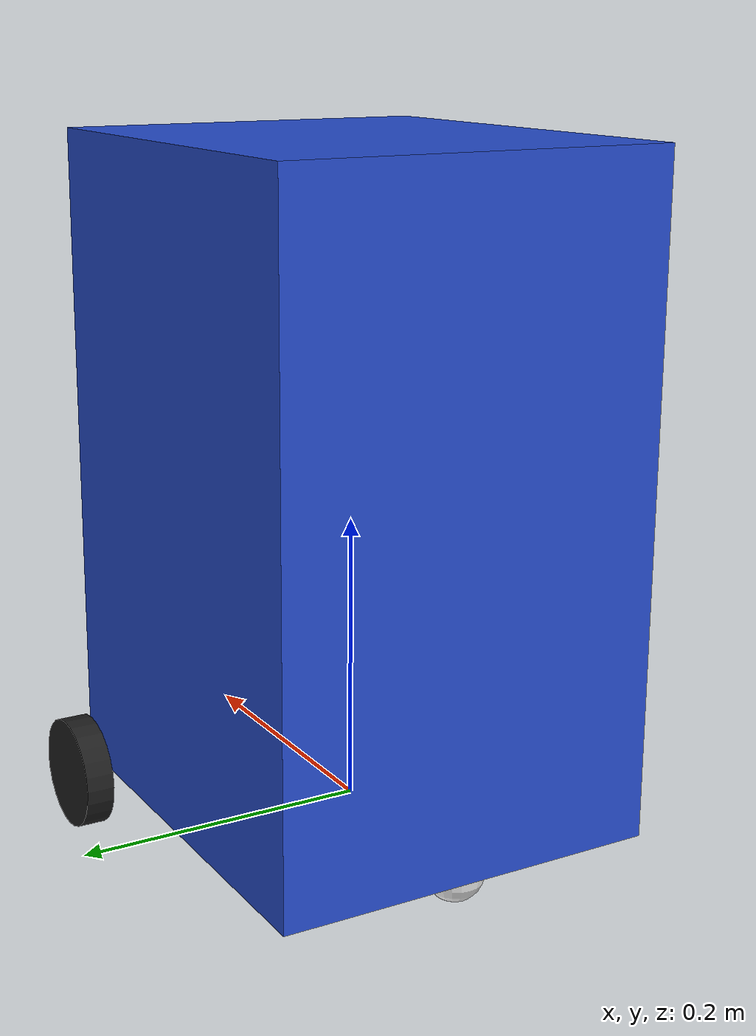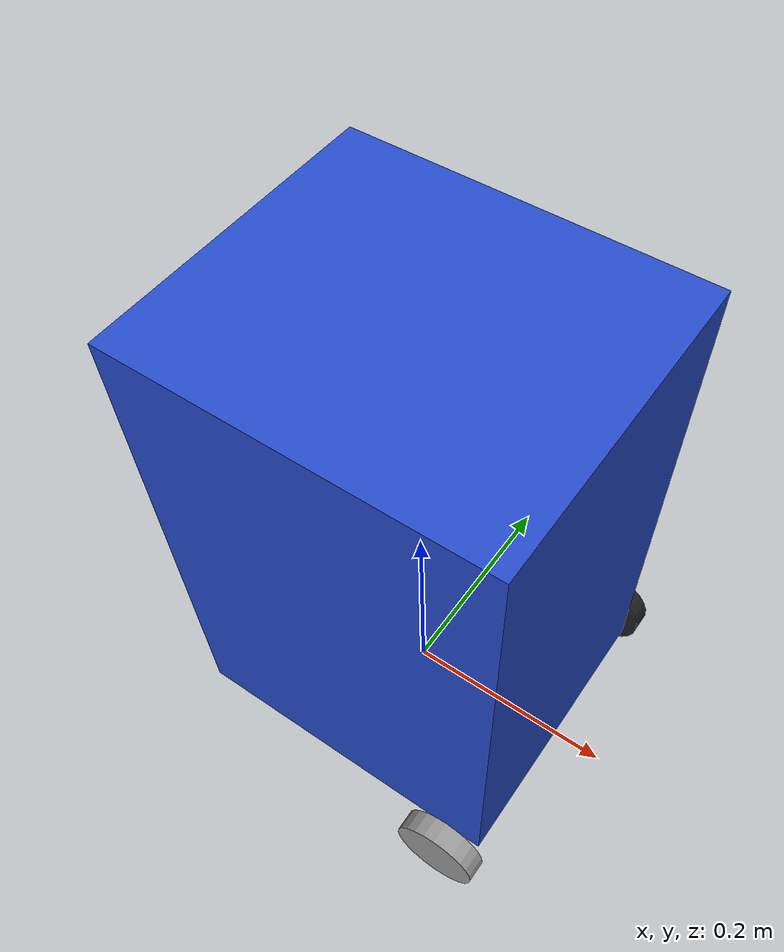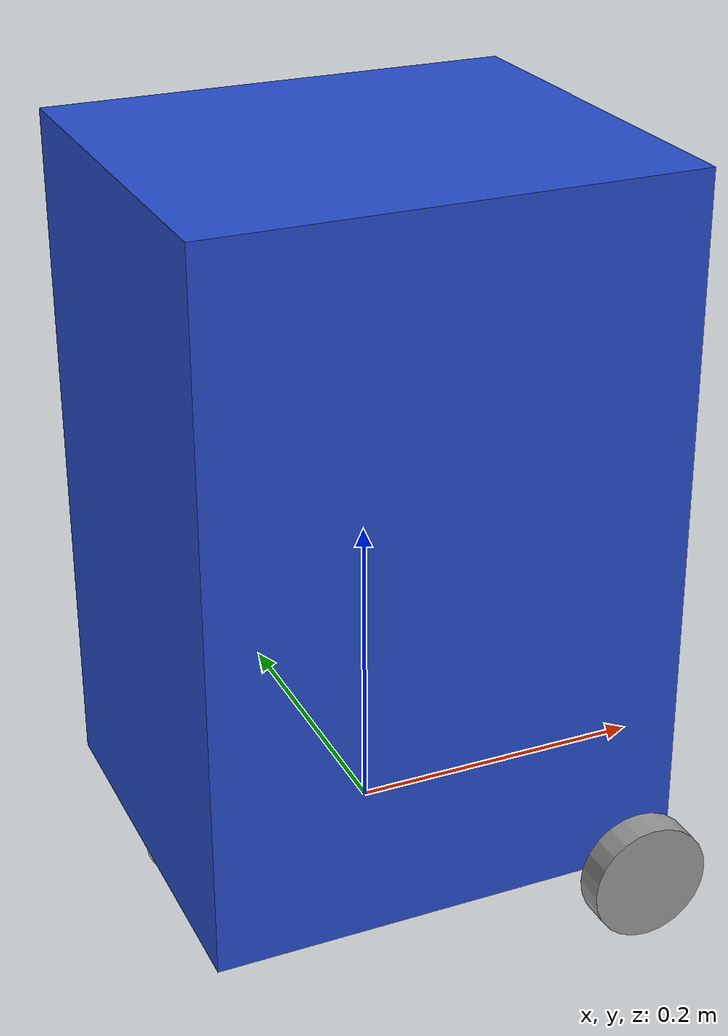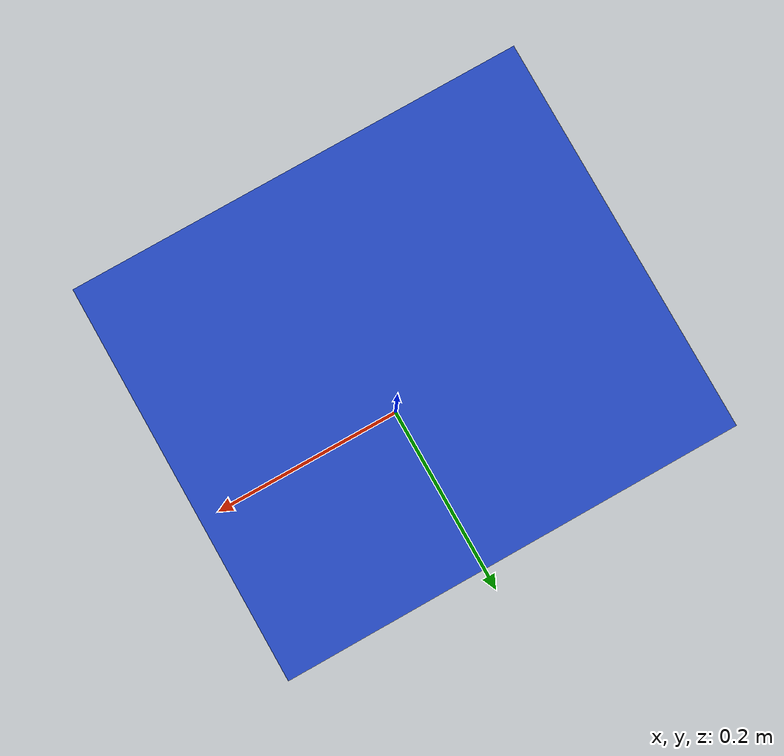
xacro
<?xml version="1.0"?>
<!-- Basic differential drive mobile base -->
<robot xmlns:xacro="http://www.ros.org/wiki/xacro" name="diffdrive_robot">
  <xacro:arg name="prefix" default="" />

  <xacro:include filename="$(find sanehal_vehicle_description)/urdf/diffbot.xacro" />

  <!-- Import Rviz colors -->
  <xacro:include filename="$(find sanehal_vehicle_description)/gazebo/diffbot.materials.xacro" />

  <!-- Import diffbot ros2_control description -->
  <xacro:include filename="$(find sanehal_vehicle_description)/ros2_control/diffbot.ros2_control.xacro" />

  <xacro:diffbot prefix="$(arg prefix)" />

  <xacro:diffbot_ros2_control
    name="Sanehal" prefix="$(arg prefix)" />

</robot>

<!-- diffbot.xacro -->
<robot xmlns:xacro="http://www.ros.org/wiki/xacro">

  <!-- ロボットの表示を行う本体部分 -->
  <xacro:macro name="diffbot" params="prefix">

  <!-- Constants for robot dimensions -->
  <xacro:property name="PI" value="3.1415926535897931"/>
  <xacro:property name="base_mass" value="2.0" /> <!-- arbitrary value for base mass -->
  <xacro:property name="base_width" value="0.30750" />
  <xacro:property name="base_length" value="0.268" />
  <xacro:property name="base_height" value="0.45542" />

  <xacro:property name="wheel_mass" value="0.100" /> <!-- arbitrary value for wheel mass -->
  <xacro:property name="wheel_len" value="0.020" />
  <xacro:property name="wheel_radius" value="0.03925" />
  <xacro:property name="wheel_x_offset" value="0.12525" />
  <xacro:property name="caster_wheel_mass" value="0.03" /> <!-- arbitrary value for caster wheel mass -->
  <xacro:property name="caster_wheel_x_offset" value="-0.09175" /> <!-- arbitrary value for caster wheel mass -->
  <xacro:property name="caster_wheel_radius" value="0.020" />
  <xacro:property name="z_offset" value="-0" /> <!-- Space btw top of beam and the each joint -->

    <!-- Base Link -->
    <link name="${prefix}base_link">
      <collision>
        <origin xyz="0 0 0" rpy="0 0 0"/>
        <geometry>
          <box size="${base_width} ${base_length} ${base_height}"/>
        </geometry>
      </collision>

      <visual>
        <origin xyz="0 0 ${base_height/2}" rpy="0 0 0"/>
        <geometry>
          <box size="${base_width} ${base_length} ${base_height}"/>
        </geometry>
        <material name="blue"/>
      </visual>

      <inertial>
        <origin xyz="0 0 0" rpy="0 0 0"/>
        <mass value="${base_mass}"/>
        <inertia
          ixx="${base_mass / 12.0 * (base_length*base_length + base_height*base_height)}" ixy="0.0" ixz="0.0"
          iyy="${base_mass / 12.0 * (base_height*base_height + base_width*base_width)}" iyz="0.0"
          izz="${base_mass / 12.0 * (base_width*base_width + base_length*base_length)}"/>
        </inertial>
    </link>

    <!-- Lidar sensor-->

    <!-- left wheel Link -->
    <link name="${prefix}left_wheel">
      <collision>
        <origin xyz="0 0 0" rpy="${PI/2} 0 0"/>
        <geometry>
          <cylinder length="${wheel_len}" radius="${wheel_radius}"/>
        </geometry>
      </collision>

      <visual>
        <origin xyz="0 0 0" rpy="${PI/2} 0 0"/>
        <geometry>
          <cylinder length="${wheel_len}" radius="${wheel_radius}"/>
        </geometry>
        <material name="black"/>
      </visual>

      <inertial>
        <origin xyz="0 0 0" rpy="${PI/2} 0 0"/>
        <mass value="${wheel_mass}"/>
        <inertia
          ixx="${wheel_mass / 12.0 * (3*wheel_radius + wheel_len*wheel_len)}" ixy="0.0" ixz="0.0"
          iyy="${wheel_mass / 12.0 * wheel_radius*wheel_radius}" iyz="0.0"
          izz="${wheel_mass / 12.0 * wheel_radius*wheel_radius}"/>
        </inertial>
    </link>

    <!-- right wheel Link -->
    <link name="${prefix}right_wheel">
      <collision>
        <origin xyz="0 0 0" rpy="${PI/2} 0 0"/>
        <geometry>
          <cylinder length="${wheel_len}" radius="${wheel_radius}"/>
        </geometry>
      </collision>

      <visual>
        <origin xyz="0 0 0" rpy="${PI/2} 0 0"/>
        <geometry>
          <cylinder length="${wheel_len}" radius="${wheel_radius}"/>
        </geometry>
        <material name="grey"/>
      </visual>

      <inertial>
        <origin xyz="0 0 0" rpy="${PI/2} 0 0"/>
        <mass value="${wheel_mass}"/>
        <inertia
          ixx="${wheel_mass / 12.0 * (3*wheel_radius + wheel_len*wheel_len)}" ixy="0.0" ixz="0.0"
          iyy="${wheel_mass / 12.0 * wheel_radius*wheel_radius}" iyz="0.0"
          izz="${wheel_mass / 12.0 * wheel_radius*wheel_radius}"/>
        </inertial>
    </link>

    <!-- caster rear wheel Link -->
    <link name="${prefix}caster_rear_wheel">
      <collision>
        <origin xyz="0 0 0" rpy="0 0 0"/>
        <geometry>
          <sphere radius="${caster_wheel_radius}"/>
        </geometry>
      </collision>

      <visual>
        <origin xyz="0 0 0" rpy="0 0 0"/>
        <geometry>
          <sphere radius="${caster_wheel_radius}"/>
        </geometry>
        <material name="white"/>
      </visual>

      <inertial>
        <origin xyz="0 0 0" rpy="0 0 0"/>
        <mass value="${caster_wheel_mass}"/>
        <inertia
          ixx="${caster_wheel_mass * 0.4 * (caster_wheel_radius * caster_wheel_radius)}" ixy="0.0" ixz="0.0"
          iyy="${caster_wheel_mass * 0.4 * (caster_wheel_radius * caster_wheel_radius)}" iyz="0.0"
          izz="${caster_wheel_mass * 0.4 * (caster_wheel_radius * caster_wheel_radius)}"/>
        </inertial>
    </link>

    <!-- joints -->
    <joint name="${prefix}left_wheel_joint" type="continuous">
      <parent link="${prefix}base_link"/>
      <child link="${prefix}left_wheel"/>
      <origin xyz="${wheel_x_offset} ${base_width/2} ${z_offset}" rpy="0 0 0"/>
      <axis xyz="0 1 0"/>
      <dynamics damping="0.2"/>
    </joint>

    <joint name="${prefix}right_wheel_joint" type="continuous">
      <parent link="${prefix}base_link"/>
      <child link="${prefix}right_wheel"/>
      <origin xyz="${wheel_x_offset} -${base_width/2} ${z_offset}" rpy="0 0 ${PI}"/>
      <axis xyz="0 1 0"/>
      <dynamics damping="0.2"/>
    </joint>

    <joint name="${prefix}caster_rear_wheel_joint" type="f">
      <parent link="${prefix}base_link"/>
      <child link="${prefix}caster_rear_wheel"/>
      <origin xyz="${-base_width/2 + caster_wheel_radius} 0 ${z_offset}" rpy="0 0 0"/>
    </joint>
  </xacro:macro>

</robot>
